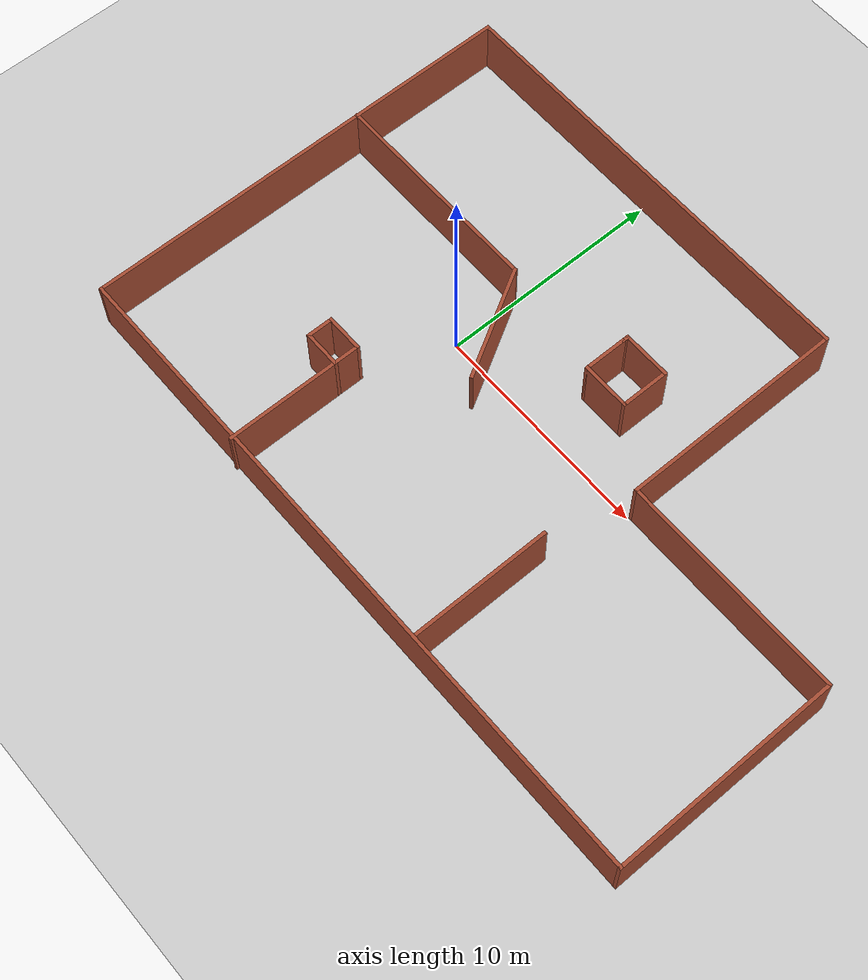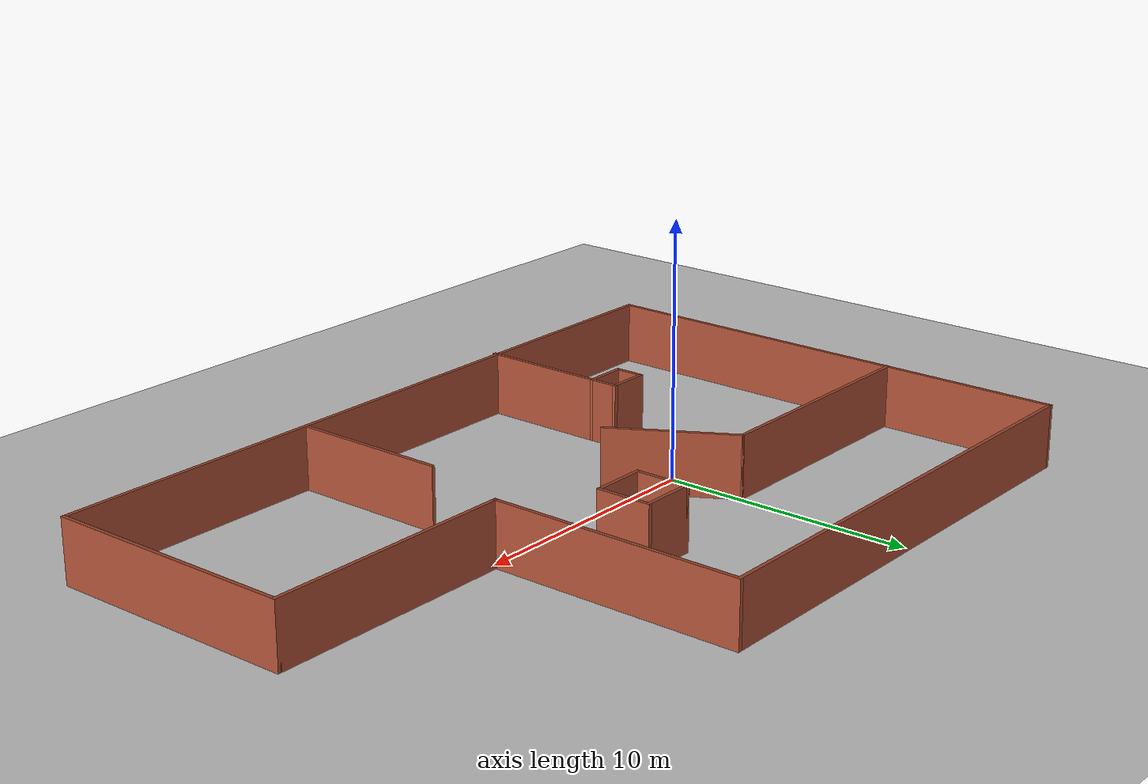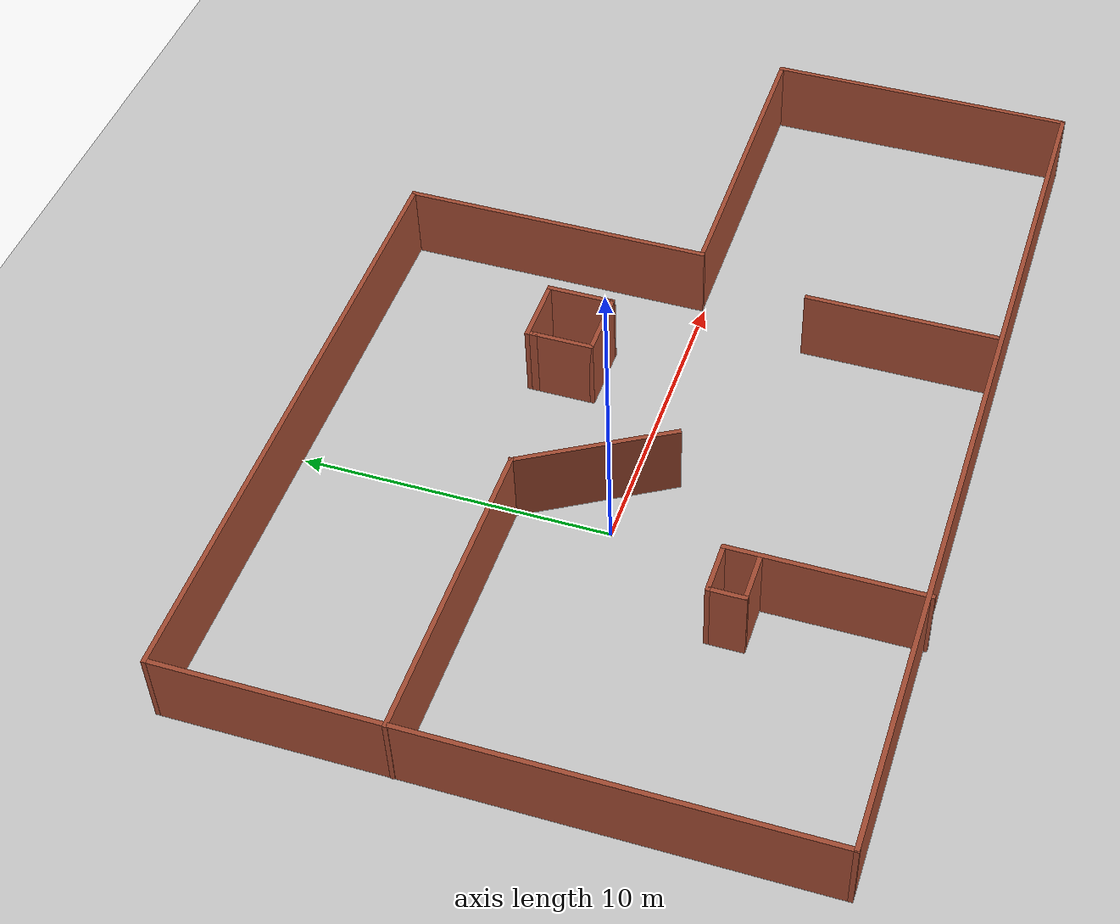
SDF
<sdf version="1.7">
 <world name="default">
  <plugin name="ros_link_attacher_plugin" filename="libgazebo_ros_link_attacher.so"/>
  <light name="sun" type="directional">
   <pose>0 0 10 0 -0 0</pose>
   <diffuse>0.8 0.8 0.8 1</diffuse>
   <specular>0.2 0.2 0.2 1</specular>
   <attenuation>
    <range>1000</range>
    <constant>0.9</constant>
    <linear>0.01</linear>
    <quadratic>0.001</quadratic>
   </attenuation>
   <direction>-0.5 0.1 -0.9</direction>
   <spot><inner_angle>0</inner_angle><outer_angle>0</outer_angle><falloff>0</falloff></spot>
  </light>
  <model name="ground_plane">
   <static>1</static>
   <link name="link">
    <collision name="collision">
     <geometry><plane><normal>0 0 1</normal><size>100 100</size></plane></geometry>
     <surface><friction><ode><mu>100</mu><mu2>50</mu2></ode></friction></surface>
    </collision>
    <visual name="visual">
     <cast_shadows>0</cast_shadows>
     <geometry><plane><normal>0 0 1</normal><size>100 100</size></plane></geometry>
     <material>
      <script><uri>file://media/materials/scripts/gazebo.material</uri><name>Gazebo/Grey</name></script>
     </material>
    </visual>
   </link>
  </model>
  <gravity>0 0 -9.8</gravity>
  <magnetic_field>6e-06 2.3e-05 -4.2e-05</magnetic_field>
  <atmosphere type="adiabatic"/>
  <physics type="ode">
   <max_step_size>0.001</max_step_size>
   <real_time_factor>1</real_time_factor>
   <real_time_update_rate>1000</real_time_update_rate>
  </physics>
  <scene><ambient>0.4 0.4 0.4 1</ambient><background>0.7 0.7 0.7 1</background><shadows>1</shadows></scene>
  <spherical_coordinates>
   <surface_model>EARTH_WGS84</surface_model>
   <latitude_deg>0</latitude_deg>
   <longitude_deg>0</longitude_deg>
   <elevation>0</elevation>
   <heading_deg>0</heading_deg>
  </spherical_coordinates>
  <model name="flocking2">
   <pose>5.09175 0.10049 0 0 -0 0</pose>
   <link name="Wall_0">
    <collision name="Wall_0_Collision">
     <geometry><box><size>30.15 0.15 2.5</size></box></geometry>
     <pose>0 0 1.25 0 -0 0</pose>
    </collision>
    <visual name="Wall_0_Visual">
     <pose>0 0 1.25 0 -0 0</pose>
     <geometry><box><size>30.15 0.15 2.5</size></box></geometry>
     <material>
      <script><uri>file://media/materials/scripts/gazebo.material</uri><name>Gazebo/Bricks</name></script>
      <ambient>1 1 1 1</ambient>
     </material>
     <meta><layer>0</layer></meta>
    </visual>
    <pose>0.007751 -9.94417 0 0 -0 0</pose>
   </link>
   <link name="Wall_11">
    <collision name="Wall_11_Collision">
     <geometry><box><size>6.25 0.15 2.5</size></box></geometry>
     <pose>0 0 1.25 0 -0 0</pose>
    </collision>
    <visual name="Wall_11_Visual">
     <pose>0 0 1.25 0 -0 0</pose>
     <geometry><box><size>6.25 0.15 2.5</size></box></geometry>
     <material>
      <script><uri>file://media/materials/scripts/gazebo.material</uri><name>Gazebo/Bricks</name></script>
      <ambient>1 1 1 1</ambient>
     </material>
     <meta><layer>0</layer></meta>
    </visual>
    <pose>-6.46384 -7.00582 0 0 -0 1.5708</pose>
   </link>
   <link name="Wall_12">
    <collision name="Wall_12_Collision">
     <geometry><box><size>1.75 0.15 2.5</size></box></geometry>
     <pose>0 0 1.25 0 -0 0</pose>
    </collision>
    <visual name="Wall_12_Visual">
     <pose>0 0 1.25 0 -0 0</pose>
     <geometry><box><size>1.75 0.15 2.5</size></box></geometry>
     <material>
      <script><uri>file://media/materials/scripts/gazebo.material</uri><name>Gazebo/Bricks</name></script>
      <ambient>1 1 1 1</ambient>
     </material>
     <meta><layer>0</layer></meta>
    </visual>
    <pose>-7.26384 -3.95582 0 0 -0 3.14159</pose>
   </link>
   <link name="Wall_15">
    <collision name="Wall_15_Collision">
     <geometry><box><size>1.25 0.15 2.5</size></box></geometry>
     <pose>0 0 1.25 0 -0 0</pose>
    </collision>
    <visual name="Wall_15_Visual">
     <pose>0 0 1.25 0 -0 0</pose>
     <geometry><box><size>1.25 0.15 2.5</size></box></geometry>
     <material>
      <script><uri>file://media/materials/scripts/gazebo.material</uri><name>Gazebo/Bricks</name></script>
      <ambient>1 1 1 1</ambient>
     </material>
     <meta><layer>0</layer></meta>
    </visual>
    <pose>-8.06384 -4.50582 0 0 -0 -1.5708</pose>
   </link>
   <link name="Wall_16">
    <collision name="Wall_16_Collision">
     <geometry><box><size>1.75 0.15 2.5</size></box></geometry>
     <pose>0 0 1.25 0 -0 0</pose>
    </collision>
    <visual name="Wall_16_Visual">
     <pose>0 0 1.25 0 -0 0</pose>
     <geometry><box><size>1.75 0.15 2.5</size></box></geometry>
     <material>
      <script><uri>file://media/materials/scripts/gazebo.material</uri><name>Gazebo/Bricks</name></script>
      <ambient>1 1 1 1</ambient>
     </material>
     <meta><layer>0</layer></meta>
    </visual>
    <pose>-7.26384 -5.05582 0 0 -0 0</pose>
   </link>
   <link name="Wall_19">
    <collision name="Wall_19_Collision">
     <geometry><box><size>6.25 0.15 2.5</size></box></geometry>
     <pose>0 0 1.25 0 -0 0</pose>
    </collision>
    <visual name="Wall_19_Visual">
     <pose>0 0 1.25 0 -0 0</pose>
     <geometry><box><size>6.25 0.15 2.5</size></box></geometry>
     <material>
      <script><uri>file://media/materials/scripts/gazebo.material</uri><name>Gazebo/Bricks</name></script>
      <ambient>1 1 1 1</ambient>
     </material>
     <meta><layer>0</layer></meta>
    </visual>
    <pose>4.09704 -6.74054 0 0 -0 -1.5708</pose>
   </link>
   <link name="Wall_2">
    <collision name="Wall_2_Collision">
     <geometry><box><size>20.15 0.15 2.5</size></box></geometry>
     <pose>0 0 1.25 0 -0 0</pose>
    </collision>
    <visual name="Wall_2_Visual">
     <pose>0 0 1.25 0 -0 0</pose>
     <geometry><box><size>20.15 0.15 2.5</size></box></geometry>
     <material>
      <script><uri>file://media/materials/scripts/gazebo.material</uri><name>Gazebo/Bricks</name></script>
      <ambient>1 1 1 1</ambient>
     </material>
     <meta><layer>0</layer></meta>
    </visual>
    <pose>-14.9922 0.055825 0 0 -0 1.5708</pose>
   </link>
   <link name="Wall_21">
    <collision name="Wall_21_Collision">
     <geometry><box><size>2 0.15 2.5</size></box></geometry>
     <pose>0 0 1.25 0 -0 0</pose>
    </collision>
    <visual name="Wall_21_Visual">
     <pose>0 0 1.25 0 -0 0</pose>
     <geometry><box><size>2 0.15 2.5</size></box></geometry>
     <material>
      <script><uri>file://media/materials/scripts/gazebo.material</uri><name>Gazebo/Bricks</name></script>
      <ambient>1 1 1 1</ambient>
     </material>
     <meta><layer>0</layer></meta>
    </visual>
    <pose>-0.022655 3.08882 0 0 -0 -1.5708</pose>
   </link>
   <link name="Wall_22">
    <collision name="Wall_22_Collision">
     <geometry><box><size>2.25 0.15 2.5</size></box></geometry>
     <pose>0 0 1.25 0 -0 0</pose>
    </collision>
    <visual name="Wall_22_Visual">
     <pose>0 0 1.25 0 -0 0</pose>
     <geometry><box><size>2.25 0.15 2.5</size></box></geometry>
     <material>
      <script><uri>file://media/materials/scripts/gazebo.material</uri><name>Gazebo/Bricks</name></script>
      <ambient>1 1 1 1</ambient>
     </material>
     <meta><layer>0</layer></meta>
    </visual>
    <pose>1.02734 2.16382 0 0 -0 0</pose>
   </link>
   <link name="Wall_23">
    <collision name="Wall_23_Collision">
     <geometry><box><size>2.25 0.15 2.5</size></box></geometry>
     <pose>0 0 1.25 0 -0 0</pose>
    </collision>
    <visual name="Wall_23_Visual">
     <pose>0 0 1.25 0 -0 0</pose>
     <geometry><box><size>2.25 0.15 2.5</size></box></geometry>
     <material>
      <script><uri>file://media/materials/scripts/gazebo.material</uri><name>Gazebo/Bricks</name></script>
      <ambient>1 1 1 1</ambient>
     </material>
     <meta><layer>0</layer></meta>
    </visual>
    <pose>2.07735 3.21382 0 0 -0 1.5708</pose>
   </link>
   <link name="Wall_24">
    <collision name="Wall_24_Collision">
     <geometry><box><size>2.25 0.15 2.5</size></box></geometry>
     <pose>0 0 1.25 0 -0 0</pose>
    </collision>
    <visual name="Wall_24_Visual">
     <pose>0 0 1.25 0 -0 0</pose>
     <geometry><box><size>2.25 0.15 2.5</size></box></geometry>
     <material>
      <script><uri>file://media/materials/scripts/gazebo.material</uri><name>Gazebo/Bricks</name></script>
      <ambient>1 1 1 1</ambient>
     </material>
     <meta><layer>0</layer></meta>
    </visual>
    <pose>1.02734 4.26382 0 0 -0 3.14159</pose>
   </link>
   <link name="Wall_26">
    <collision name="Wall_26_Collision">
     <geometry><box><size>0.4 0.15 2.5</size></box></geometry>
     <pose>0 0 1.25 0 -0 0</pose>
    </collision>
    <visual name="Wall_26_Visual">
     <pose>0 0 1.25 0 -0 0</pose>
     <geometry><box><size>0.4 0.15 2.5</size></box></geometry>
     <material>
      <script><uri>file://media/materials/scripts/gazebo.material</uri><name>Gazebo/Bricks</name></script>
      <ambient>1 1 1 1</ambient>
     </material>
     <meta><layer>0</layer></meta>
    </visual>
    <pose>-0.022655 4.13882 0 0 -0 1.5708</pose>
   </link>
   <link name="Wall_3">
    <collision name="Wall_3_Collision">
     <geometry><box><size>20.15 0.15 2.5</size></box></geometry>
     <pose>0 0 1.25 0 -0 0</pose>
    </collision>
    <visual name="Wall_3_Visual">
     <pose>0 0 1.25 0 -0 0</pose>
     <geometry><box><size>20.15 0.15 2.5</size></box></geometry>
     <material>
      <script><uri>file://media/materials/scripts/gazebo.material</uri><name>Gazebo/Bricks</name></script>
      <ambient>1 1 1 1</ambient>
     </material>
     <meta><layer>0</layer></meta>
    </visual>
    <pose>-4.99225 10.0558 0 0 -0 0</pose>
   </link>
   <link name="Wall_4">
    <collision name="Wall_4_Collision">
     <geometry><box><size>10.15 0.15 2.5</size></box></geometry>
     <pose>0 0 1.25 0 -0 0</pose>
    </collision>
    <visual name="Wall_4_Visual">
     <pose>0 0 1.25 0 -0 0</pose>
     <geometry><box><size>10.15 0.15 2.5</size></box></geometry>
     <material>
      <script><uri>file://media/materials/scripts/gazebo.material</uri><name>Gazebo/Bricks</name></script>
      <ambient>1 1 1 1</ambient>
     </material>
     <meta><layer>0</layer></meta>
    </visual>
    <pose>5.00775 5.05582 0 0 -0 -1.5708</pose>
   </link>
   <link name="Wall_5">
    <collision name="Wall_5_Collision">
     <geometry><box><size>10.15 0.15 2.5</size></box></geometry>
     <pose>0 0 1.25 0 -0 0</pose>
    </collision>
    <visual name="Wall_5_Visual">
     <pose>0 0 1.25 0 -0 0</pose>
     <geometry><box><size>10.15 0.15 2.5</size></box></geometry>
     <material>
      <script><uri>file://media/materials/scripts/gazebo.material</uri><name>Gazebo/Bricks</name></script>
      <ambient>1 1 1 1</ambient>
     </material>
     <meta><layer>0</layer></meta>
    </visual>
    <pose>10.0078 0.055825 0 0 -0 0</pose>
   </link>
   <link name="Wall_6">
    <collision name="Wall_6_Collision">
     <geometry><box><size>10.15 0.15 2.5</size></box></geometry>
     <pose>0 0 1.25 0 -0 0</pose>
    </collision>
    <visual name="Wall_6_Visual">
     <pose>0 0 1.25 0 -0 0</pose>
     <geometry><box><size>10.15 0.15 2.5</size></box></geometry>
     <material>
      <script><uri>file://media/materials/scripts/gazebo.material</uri><name>Gazebo/Bricks</name></script>
      <ambient>1 1 1 1</ambient>
     </material>
     <meta><layer>0</layer></meta>
    </visual>
    <pose>15.0078 -4.94418 0 0 -0 -1.5708</pose>
   </link>
   <link name="Wall_8">
    <collision name="Wall_8_Collision">
     <geometry><box><size>10 0.15 2.5</size></box></geometry>
     <pose>0 0 1.25 0 -0 0</pose>
    </collision>
    <visual name="Wall_8_Visual">
     <pose>0 0 1.25 0 -0 0</pose>
     <geometry><box><size>10 0.15 2.5</size></box></geometry>
     <material>
      <script><uri>file://media/materials/scripts/gazebo.material</uri><name>Gazebo/Bricks</name></script>
      <ambient>1 1 1 1</ambient>
     </material>
     <meta><layer>0</layer></meta>
    </visual>
    <pose>-10.0828 2.96347 0 0 -0 0</pose>
   </link>
   <link name="Wall_9">
    <collision name="Wall_9_Collision">
     <geometry><box><size>5.25 0.15 2.5</size></box></geometry>
     <pose>0 0 1.25 0 -0 0</pose>
    </collision>
    <visual name="Wall_9_Visual">
     <pose>0 0 1.25 0 -0 0</pose>
     <geometry><box><size>5.25 0.15 2.5</size></box></geometry>
     <material>
      <script><uri>file://media/materials/scripts/gazebo.material</uri><name>Gazebo/Bricks</name></script>
      <ambient>1 1 1 1</ambient>
     </material>
     <meta><layer>0</layer></meta>
    </visual>
    <pose>-3.88275 0.755109 0 0 -0 -1.0472</pose>
   </link>
   <static>1</static>
  </model>
 </world>
</sdf>
